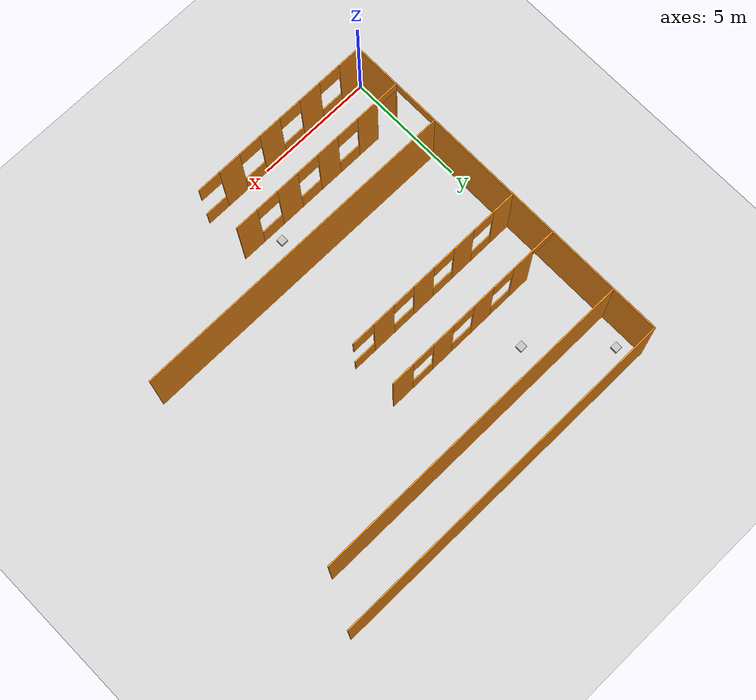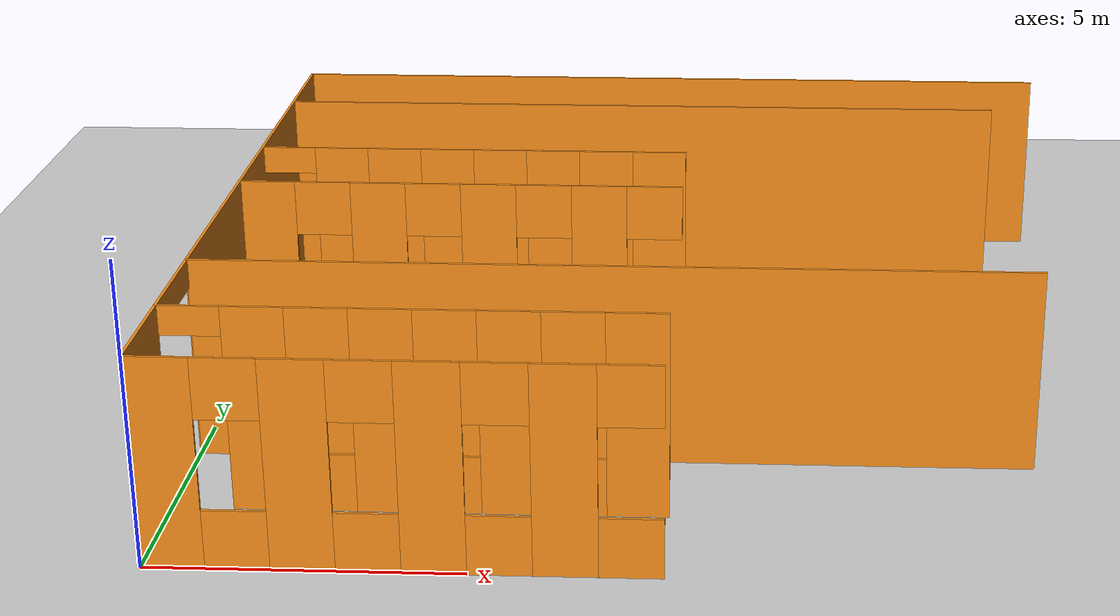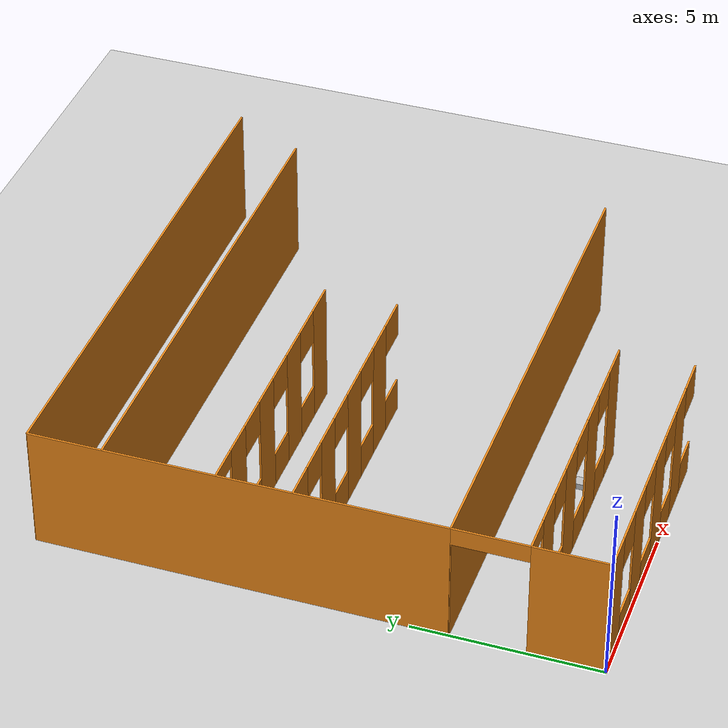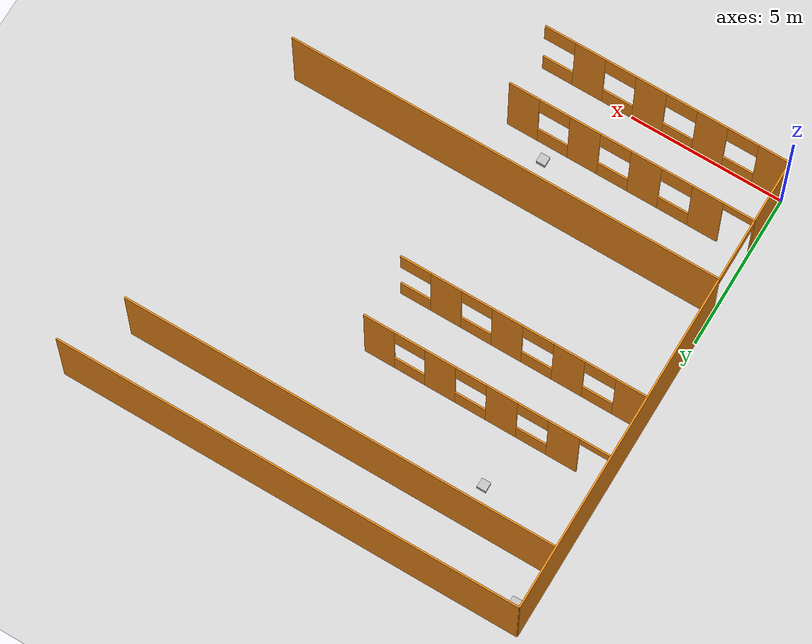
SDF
<sdf version="1.6">
 <world name="default">
  <include><uri>model://rirpc_box</uri><name>cube_4</name><pose>3.03125 11.71875 0 0 0 0</pose></include>
  <include><uri>model://rirpc_box</uri><name>cube_3</name><pose>6.53125 2.46875 0 0 0 0</pose></include>
  <include><uri>model://rirpc_box</uri><name>cube_0</name><pose>0.53125 14.21875 0 0 0 0</pose></include>
  <model name="window_30">
   <pose>2.5 10.0 1.75 0 0 -0.0</pose>
   <link name="top">
    <pose>0 0 1.25 0 0 0</pose>
    <inertial>
     <mass>1</mass>
     <inertia><ixx>0</ixx><ixy>0</ixy><ixz>0</ixz><iyy>0</iyy><iyz>0</iyz><izz>0</izz></inertia>
    </inertial>
    <collision name="collision"><geometry><box><size>1.0 0.05 1.0</size></box></geometry></collision>
    <visual name="visual">
     <geometry><box><size>1.0 0.05 1.0</size></box></geometry>
     <material>
      <script><name>Gazebo/Orange</name><uri>file://media/materials/scripts/gazebo.material</uri></script>
     </material>
    </visual>
   </link>
   <link name="bot">
    <pose>0 0 -1.25 0 0 0</pose>
    <inertial>
     <mass>1</mass>
     <inertia><ixx>0</ixx><ixy>0</ixy><ixz>0</ixz><iyy>0</iyy><iyz>0</iyz><izz>0</izz></inertia>
    </inertial>
    <collision name="collision"><geometry><box><size>1.0 0.05 1.0</size></box></geometry></collision>
    <visual name="visual">
     <geometry><box><size>1.0 0.05 1.0</size></box></geometry>
     <material>
      <script><name>Gazebo/Orange</name><uri>file://media/materials/scripts/gazebo.material</uri></script>
     </material>
    </visual>
   </link>
   <static>1</static>
  </model>
  <model name="window_29">
   <pose>4.5 10.0 1.75 0 0 -0.0</pose>
   <link name="top">
    <pose>0 0 1.25 0 0 0</pose>
    <inertial>
     <mass>1</mass>
     <inertia><ixx>0</ixx><ixy>0</ixy><ixz>0</ixz><iyy>0</iyy><iyz>0</iyz><izz>0</izz></inertia>
    </inertial>
    <collision name="collision"><geometry><box><size>1.0 0.05 1.0</size></box></geometry></collision>
    <visual name="visual">
     <geometry><box><size>1.0 0.05 1.0</size></box></geometry>
     <material>
      <script><name>Gazebo/Orange</name><uri>file://media/materials/scripts/gazebo.material</uri></script>
     </material>
    </visual>
   </link>
   <link name="bot">
    <pose>0 0 -1.25 0 0 0</pose>
    <inertial>
     <mass>1</mass>
     <inertia><ixx>0</ixx><ixy>0</ixy><ixz>0</ixz><iyy>0</iyy><iyz>0</iyz><izz>0</izz></inertia>
    </inertial>
    <collision name="collision"><geometry><box><size>1.0 0.05 1.0</size></box></geometry></collision>
    <visual name="visual">
     <geometry><box><size>1.0 0.05 1.0</size></box></geometry>
     <material>
      <script><name>Gazebo/Orange</name><uri>file://media/materials/scripts/gazebo.material</uri></script>
     </material>
    </visual>
   </link>
   <static>1</static>
  </model>
  <model name="window_28">
   <pose>6.5 10.0 1.75 0 0 -3.141592653589793</pose>
   <link name="top">
    <pose>0 0 1.25 0 0 0</pose>
    <inertial>
     <mass>1</mass>
     <inertia><ixx>0</ixx><ixy>0</ixy><ixz>0</ixz><iyy>0</iyy><iyz>0</iyz><izz>0</izz></inertia>
    </inertial>
    <collision name="collision"><geometry><box><size>1.0 0.05 1.0</size></box></geometry></collision>
    <visual name="visual">
     <geometry><box><size>1.0 0.05 1.0</size></box></geometry>
     <material>
      <script><name>Gazebo/Orange</name><uri>file://media/materials/scripts/gazebo.material</uri></script>
     </material>
    </visual>
   </link>
   <link name="bot">
    <pose>0 0 -1.25 0 0 0</pose>
    <inertial>
     <mass>1</mass>
     <inertia><ixx>0</ixx><ixy>0</ixy><ixz>0</ixz><iyy>0</iyy><iyz>0</iyz><izz>0</izz></inertia>
    </inertial>
    <collision name="collision"><geometry><box><size>1.0 0.05 1.0</size></box></geometry></collision>
    <visual name="visual">
     <geometry><box><size>1.0 0.05 1.0</size></box></geometry>
     <material>
      <script><name>Gazebo/Orange</name><uri>file://media/materials/scripts/gazebo.material</uri></script>
     </material>
    </visual>
   </link>
   <static>1</static>
  </model>
  <model name="window_20">
   <pose>7.5 8.0 1.75 0 0 -3.141592653589793</pose>
   <link name="top">
    <pose>0 0 1.25 0 0 0</pose>
    <inertial>
     <mass>1</mass>
     <inertia><ixx>0</ixx><ixy>0</ixy><ixz>0</ixz><iyy>0</iyy><iyz>0</iyz><izz>0</izz></inertia>
    </inertial>
    <collision name="collision"><geometry><box><size>1.0 0.05 1.0</size></box></geometry></collision>
    <visual name="visual">
     <geometry><box><size>1.0 0.05 1.0</size></box></geometry>
     <material>
      <script><name>Gazebo/Orange</name><uri>file://media/materials/scripts/gazebo.material</uri></script>
     </material>
    </visual>
   </link>
   <link name="bot">
    <pose>0 0 -1.25 0 0 0</pose>
    <inertial>
     <mass>1</mass>
     <inertia><ixx>0</ixx><ixy>0</ixy><ixz>0</ixz><iyy>0</iyy><iyz>0</iyz><izz>0</izz></inertia>
    </inertial>
    <collision name="collision"><geometry><box><size>1.0 0.05 1.0</size></box></geometry></collision>
    <visual name="visual">
     <geometry><box><size>1.0 0.05 1.0</size></box></geometry>
     <material>
      <script><name>Gazebo/Orange</name><uri>file://media/materials/scripts/gazebo.material</uri></script>
     </material>
    </visual>
   </link>
   <static>1</static>
  </model>
  <model name="window_19">
   <pose>5.5 8.0 1.75 0 0 -3.141592653589793</pose>
   <link name="top">
    <pose>0 0 1.25 0 0 0</pose>
    <inertial>
     <mass>1</mass>
     <inertia><ixx>0</ixx><ixy>0</ixy><ixz>0</ixz><iyy>0</iyy><iyz>0</iyz><izz>0</izz></inertia>
    </inertial>
    <collision name="collision"><geometry><box><size>1.0 0.05 1.0</size></box></geometry></collision>
    <visual name="visual">
     <geometry><box><size>1.0 0.05 1.0</size></box></geometry>
     <material>
      <script><name>Gazebo/Orange</name><uri>file://media/materials/scripts/gazebo.material</uri></script>
     </material>
    </visual>
   </link>
   <link name="bot">
    <pose>0 0 -1.25 0 0 0</pose>
    <inertial>
     <mass>1</mass>
     <inertia><ixx>0</ixx><ixy>0</ixy><ixz>0</ixz><iyy>0</iyy><iyz>0</iyz><izz>0</izz></inertia>
    </inertial>
    <collision name="collision"><geometry><box><size>1.0 0.05 1.0</size></box></geometry></collision>
    <visual name="visual">
     <geometry><box><size>1.0 0.05 1.0</size></box></geometry>
     <material>
      <script><name>Gazebo/Orange</name><uri>file://media/materials/scripts/gazebo.material</uri></script>
     </material>
    </visual>
   </link>
   <static>1</static>
  </model>
  <model name="window_18">
   <pose>3.5 8.0 1.75 0 0 -3.141592653589793</pose>
   <link name="top">
    <pose>0 0 1.25 0 0 0</pose>
    <inertial>
     <mass>1</mass>
     <inertia><ixx>0</ixx><ixy>0</ixy><ixz>0</ixz><iyy>0</iyy><iyz>0</iyz><izz>0</izz></inertia>
    </inertial>
    <collision name="collision"><geometry><box><size>1.0 0.05 1.0</size></box></geometry></collision>
    <visual name="visual">
     <geometry><box><size>1.0 0.05 1.0</size></box></geometry>
     <material>
      <script><name>Gazebo/Orange</name><uri>file://media/materials/scripts/gazebo.material</uri></script>
     </material>
    </visual>
   </link>
   <link name="bot">
    <pose>0 0 -1.25 0 0 0</pose>
    <inertial>
     <mass>1</mass>
     <inertia><ixx>0</ixx><ixy>0</ixy><ixz>0</ixz><iyy>0</iyy><iyz>0</iyz><izz>0</izz></inertia>
    </inertial>
    <collision name="collision"><geometry><box><size>1.0 0.05 1.0</size></box></geometry></collision>
    <visual name="visual">
     <geometry><box><size>1.0 0.05 1.0</size></box></geometry>
     <material>
      <script><name>Gazebo/Orange</name><uri>file://media/materials/scripts/gazebo.material</uri></script>
     </material>
    </visual>
   </link>
   <static>1</static>
  </model>
  <model name="window_17">
   <pose>1.5 8.0 1.75 0 0 -3.141592653589793</pose>
   <link name="top">
    <pose>0 0 1.25 0 0 0</pose>
    <inertial>
     <mass>1</mass>
     <inertia><ixx>0</ixx><ixy>0</ixy><ixz>0</ixz><iyy>0</iyy><iyz>0</iyz><izz>0</izz></inertia>
    </inertial>
    <collision name="collision"><geometry><box><size>1.0 0.05 1.0</size></box></geometry></collision>
    <visual name="visual">
     <geometry><box><size>1.0 0.05 1.0</size></box></geometry>
     <material>
      <script><name>Gazebo/Orange</name><uri>file://media/materials/scripts/gazebo.material</uri></script>
     </material>
    </visual>
   </link>
   <link name="bot">
    <pose>0 0 -1.25 0 0 0</pose>
    <inertial>
     <mass>1</mass>
     <inertia><ixx>0</ixx><ixy>0</ixy><ixz>0</ixz><iyy>0</iyy><iyz>0</iyz><izz>0</izz></inertia>
    </inertial>
    <collision name="collision"><geometry><box><size>1.0 0.05 1.0</size></box></geometry></collision>
    <visual name="visual">
     <geometry><box><size>1.0 0.05 1.0</size></box></geometry>
     <material>
      <script><name>Gazebo/Orange</name><uri>file://media/materials/scripts/gazebo.material</uri></script>
     </material>
    </visual>
   </link>
   <static>1</static>
  </model>
  <model name="window_12">
   <pose>6.5 2.0 1.75 0 0 -3.141592653589793</pose>
   <link name="top">
    <pose>0 0 1.25 0 0 0</pose>
    <inertial>
     <mass>1</mass>
     <inertia><ixx>0</ixx><ixy>0</ixy><ixz>0</ixz><iyy>0</iyy><iyz>0</iyz><izz>0</izz></inertia>
    </inertial>
    <collision name="collision"><geometry><box><size>1.0 0.05 1.0</size></box></geometry></collision>
    <visual name="visual">
     <geometry><box><size>1.0 0.05 1.0</size></box></geometry>
     <material>
      <script><name>Gazebo/Orange</name><uri>file://media/materials/scripts/gazebo.material</uri></script>
     </material>
    </visual>
   </link>
   <link name="bot">
    <pose>0 0 -1.25 0 0 0</pose>
    <inertial>
     <mass>1</mass>
     <inertia><ixx>0</ixx><ixy>0</ixy><ixz>0</ixz><iyy>0</iyy><iyz>0</iyz><izz>0</izz></inertia>
    </inertial>
    <collision name="collision"><geometry><box><size>1.0 0.05 1.0</size></box></geometry></collision>
    <visual name="visual">
     <geometry><box><size>1.0 0.05 1.0</size></box></geometry>
     <material>
      <script><name>Gazebo/Orange</name><uri>file://media/materials/scripts/gazebo.material</uri></script>
     </material>
    </visual>
   </link>
   <static>1</static>
  </model>
  <model name="window_11">
   <pose>4.5 2.0 1.75 0 0 -3.141592653589793</pose>
   <link name="top">
    <pose>0 0 1.25 0 0 0</pose>
    <inertial>
     <mass>1</mass>
     <inertia><ixx>0</ixx><ixy>0</ixy><ixz>0</ixz><iyy>0</iyy><iyz>0</iyz><izz>0</izz></inertia>
    </inertial>
    <collision name="collision"><geometry><box><size>1.0 0.05 1.0</size></box></geometry></collision>
    <visual name="visual">
     <geometry><box><size>1.0 0.05 1.0</size></box></geometry>
     <material>
      <script><name>Gazebo/Orange</name><uri>file://media/materials/scripts/gazebo.material</uri></script>
     </material>
    </visual>
   </link>
   <link name="bot">
    <pose>0 0 -1.25 0 0 0</pose>
    <inertial>
     <mass>1</mass>
     <inertia><ixx>0</ixx><ixy>0</ixy><ixz>0</ixz><iyy>0</iyy><iyz>0</iyz><izz>0</izz></inertia>
    </inertial>
    <collision name="collision"><geometry><box><size>1.0 0.05 1.0</size></box></geometry></collision>
    <visual name="visual">
     <geometry><box><size>1.0 0.05 1.0</size></box></geometry>
     <material>
      <script><name>Gazebo/Orange</name><uri>file://media/materials/scripts/gazebo.material</uri></script>
     </material>
    </visual>
   </link>
   <static>1</static>
  </model>
  <model name="window_10">
   <pose>2.5 2.0 1.75 0 0 -3.141592653589793</pose>
   <link name="top">
    <pose>0 0 1.25 0 0 0</pose>
    <inertial>
     <mass>1</mass>
     <inertia><ixx>0</ixx><ixy>0</ixy><ixz>0</ixz><iyy>0</iyy><iyz>0</iyz><izz>0</izz></inertia>
    </inertial>
    <collision name="collision"><geometry><box><size>1.0 0.05 1.0</size></box></geometry></collision>
    <visual name="visual">
     <geometry><box><size>1.0 0.05 1.0</size></box></geometry>
     <material>
      <script><name>Gazebo/Orange</name><uri>file://media/materials/scripts/gazebo.material</uri></script>
     </material>
    </visual>
   </link>
   <link name="bot">
    <pose>0 0 -1.25 0 0 0</pose>
    <inertial>
     <mass>1</mass>
     <inertia><ixx>0</ixx><ixy>0</ixy><ixz>0</ixz><iyy>0</iyy><iyz>0</iyz><izz>0</izz></inertia>
    </inertial>
    <collision name="collision"><geometry><box><size>1.0 0.05 1.0</size></box></geometry></collision>
    <visual name="visual">
     <geometry><box><size>1.0 0.05 1.0</size></box></geometry>
     <material>
      <script><name>Gazebo/Orange</name><uri>file://media/materials/scripts/gazebo.material</uri></script>
     </material>
    </visual>
   </link>
   <static>1</static>
  </model>
  <model name="window_4">
   <pose>7.5 0.0 1.75 0 0 -3.141592653589793</pose>
   <link name="top">
    <pose>0 0 1.25 0 0 0</pose>
    <inertial>
     <mass>1</mass>
     <inertia><ixx>0</ixx><ixy>0</ixy><ixz>0</ixz><iyy>0</iyy><iyz>0</iyz><izz>0</izz></inertia>
    </inertial>
    <collision name="collision"><geometry><box><size>1.0 0.05 1.0</size></box></geometry></collision>
    <visual name="visual">
     <geometry><box><size>1.0 0.05 1.0</size></box></geometry>
     <material>
      <script><name>Gazebo/Orange</name><uri>file://media/materials/scripts/gazebo.material</uri></script>
     </material>
    </visual>
   </link>
   <link name="bot">
    <pose>0 0 -1.25 0 0 0</pose>
    <inertial>
     <mass>1</mass>
     <inertia><ixx>0</ixx><ixy>0</ixy><ixz>0</ixz><iyy>0</iyy><iyz>0</iyz><izz>0</izz></inertia>
    </inertial>
    <collision name="collision"><geometry><box><size>1.0 0.05 1.0</size></box></geometry></collision>
    <visual name="visual">
     <geometry><box><size>1.0 0.05 1.0</size></box></geometry>
     <material>
      <script><name>Gazebo/Orange</name><uri>file://media/materials/scripts/gazebo.material</uri></script>
     </material>
    </visual>
   </link>
   <static>1</static>
  </model>
  <model name="window_3">
   <pose>5.5 0.0 1.75 0 0 -3.141592653589793</pose>
   <link name="top">
    <pose>0 0 1.25 0 0 0</pose>
    <inertial>
     <mass>1</mass>
     <inertia><ixx>0</ixx><ixy>0</ixy><ixz>0</ixz><iyy>0</iyy><iyz>0</iyz><izz>0</izz></inertia>
    </inertial>
    <collision name="collision"><geometry><box><size>1.0 0.05 1.0</size></box></geometry></collision>
    <visual name="visual">
     <geometry><box><size>1.0 0.05 1.0</size></box></geometry>
     <material>
      <script><name>Gazebo/Orange</name><uri>file://media/materials/scripts/gazebo.material</uri></script>
     </material>
    </visual>
   </link>
   <link name="bot">
    <pose>0 0 -1.25 0 0 0</pose>
    <inertial>
     <mass>1</mass>
     <inertia><ixx>0</ixx><ixy>0</ixy><ixz>0</ixz><iyy>0</iyy><iyz>0</iyz><izz>0</izz></inertia>
    </inertial>
    <collision name="collision"><geometry><box><size>1.0 0.05 1.0</size></box></geometry></collision>
    <visual name="visual">
     <geometry><box><size>1.0 0.05 1.0</size></box></geometry>
     <material>
      <script><name>Gazebo/Orange</name><uri>file://media/materials/scripts/gazebo.material</uri></script>
     </material>
    </visual>
   </link>
   <static>1</static>
  </model>
  <model name="window_2">
   <pose>3.5 0.0 1.75 0 0 -3.141592653589793</pose>
   <link name="top">
    <pose>0 0 1.25 0 0 0</pose>
    <inertial>
     <mass>1</mass>
     <inertia><ixx>0</ixx><ixy>0</ixy><ixz>0</ixz><iyy>0</iyy><iyz>0</iyz><izz>0</izz></inertia>
    </inertial>
    <collision name="collision"><geometry><box><size>1.0 0.05 1.0</size></box></geometry></collision>
    <visual name="visual">
     <geometry><box><size>1.0 0.05 1.0</size></box></geometry>
     <material>
      <script><name>Gazebo/Orange</name><uri>file://media/materials/scripts/gazebo.material</uri></script>
     </material>
    </visual>
   </link>
   <link name="bot">
    <pose>0 0 -1.25 0 0 0</pose>
    <inertial>
     <mass>1</mass>
     <inertia><ixx>0</ixx><ixy>0</ixy><ixz>0</ixz><iyy>0</iyy><iyz>0</iyz><izz>0</izz></inertia>
    </inertial>
    <collision name="collision"><geometry><box><size>1.0 0.05 1.0</size></box></geometry></collision>
    <visual name="visual">
     <geometry><box><size>1.0 0.05 1.0</size></box></geometry>
     <material>
      <script><name>Gazebo/Orange</name><uri>file://media/materials/scripts/gazebo.material</uri></script>
     </material>
    </visual>
   </link>
   <static>1</static>
  </model>
  <model name="window_1">
   <pose>1.5 0.0 1.75 0 0 -3.141592653589793</pose>
   <link name="top">
    <pose>0 0 1.25 0 0 0</pose>
    <inertial>
     <mass>1</mass>
     <inertia><ixx>0</ixx><ixy>0</ixy><ixz>0</ixz><iyy>0</iyy><iyz>0</iyz><izz>0</izz></inertia>
    </inertial>
    <collision name="collision"><geometry><box><size>1.0 0.05 1.0</size></box></geometry></collision>
    <visual name="visual">
     <geometry><box><size>1.0 0.05 1.0</size></box></geometry>
     <material>
      <script><name>Gazebo/Orange</name><uri>file://media/materials/scripts/gazebo.material</uri></script>
     </material>
    </visual>
   </link>
   <link name="bot">
    <pose>0 0 -1.25 0 0 0</pose>
    <inertial>
     <mass>1</mass>
     <inertia><ixx>0</ixx><ixy>0</ixy><ixz>0</ixz><iyy>0</iyy><iyz>0</iyz><izz>0</izz></inertia>
    </inertial>
    <collision name="collision"><geometry><box><size>1.0 0.05 1.0</size></box></geometry></collision>
    <visual name="visual">
     <geometry><box><size>1.0 0.05 1.0</size></box></geometry>
     <material>
      <script><name>Gazebo/Orange</name><uri>file://media/materials/scripts/gazebo.material</uri></script>
     </material>
    </visual>
   </link>
   <static>1</static>
  </model>
  <model name="box_44">
   <pose>0.5 10.0 3.25 0 0 -0.0</pose>
   <link name="link">
    <inertial>
     <mass>1</mass>
     <inertia><ixx>0</ixx><ixy>0</ixy><ixz>0</ixz><iyy>0</iyy><iyz>0</iyz><izz>0</izz></inertia>
    </inertial>
    <collision name="collision"><geometry><box><size>1.0 0.05 0.5</size></box></geometry></collision>
    <visual name="visual">
     <geometry><box><size>1.0 0.05 0.5</size></box></geometry>
     <material>
      <script><name>Gazebo/Orange</name><uri>file://media/materials/scripts/gazebo.material</uri></script>
     </material>
    </visual>
   </link>
   <static>1</static>
  </model>
  <model name="box_40">
   <pose>0.5 2.0 3.25 0 0 -3.141592653589793</pose>
   <link name="link">
    <inertial>
     <mass>1</mass>
     <inertia><ixx>0</ixx><ixy>0</ixy><ixz>0</ixz><iyy>0</iyy><iyz>0</iyz><izz>0</izz></inertia>
    </inertial>
    <collision name="collision"><geometry><box><size>1.0 0.05 0.5</size></box></geometry></collision>
    <visual name="visual">
     <geometry><box><size>1.0 0.05 0.5</size></box></geometry>
     <material>
      <script><name>Gazebo/Orange</name><uri>file://media/materials/scripts/gazebo.material</uri></script>
     </material>
    </visual>
   </link>
   <static>1</static>
  </model>
  <model name="box_39">
   <pose>0.0 3.0 3.25 0 0 -1.5707963267948966</pose>
   <link name="link">
    <inertial>
     <mass>1</mass>
     <inertia><ixx>0</ixx><ixy>0</ixy><ixz>0</ixz><iyy>0</iyy><iyz>0</iyz><izz>0</izz></inertia>
    </inertial>
    <collision name="collision"><geometry><box><size>2.0 0.05 0.5</size></box></geometry></collision>
    <visual name="visual">
     <geometry><box><size>2.0 0.05 0.5</size></box></geometry>
     <material>
      <script><name>Gazebo/Orange</name><uri>file://media/materials/scripts/gazebo.material</uri></script>
     </material>
    </visual>
   </link>
   <static>1</static>
  </model>
  <model name="box_38">
   <pose>1.5 10.0 1.75 0 0 -0.0</pose>
   <link name="link">
    <inertial>
     <mass>1</mass>
     <inertia><ixx>0</ixx><ixy>0</ixy><ixz>0</ixz><iyy>0</iyy><iyz>0</iyz><izz>0</izz></inertia>
    </inertial>
    <collision name="collision"><geometry><box><size>1.0 0.05 3.5</size></box></geometry></collision>
    <visual name="visual">
     <geometry><box><size>1.0 0.05 3.5</size></box></geometry>
     <material>
      <script><name>Gazebo/Orange</name><uri>file://media/materials/scripts/gazebo.material</uri></script>
     </material>
    </visual>
   </link>
   <static>1</static>
  </model>
  <model name="box_37">
   <pose>3.5 10.0 1.75 0 0 -0.0</pose>
   <link name="link">
    <inertial>
     <mass>1</mass>
     <inertia><ixx>0</ixx><ixy>0</ixy><ixz>0</ixz><iyy>0</iyy><iyz>0</iyz><izz>0</izz></inertia>
    </inertial>
    <collision name="collision"><geometry><box><size>1.0 0.05 3.5</size></box></geometry></collision>
    <visual name="visual">
     <geometry><box><size>1.0 0.05 3.5</size></box></geometry>
     <material>
      <script><name>Gazebo/Orange</name><uri>file://media/materials/scripts/gazebo.material</uri></script>
     </material>
    </visual>
   </link>
   <static>1</static>
  </model>
  <model name="box_36">
   <pose>5.5 10.0 1.75 0 0 -0.0</pose>
   <link name="link">
    <inertial>
     <mass>1</mass>
     <inertia><ixx>0</ixx><ixy>0</ixy><ixz>0</ixz><iyy>0</iyy><iyz>0</iyz><izz>0</izz></inertia>
    </inertial>
    <collision name="collision"><geometry><box><size>1.0 0.05 3.5</size></box></geometry></collision>
    <visual name="visual">
     <geometry><box><size>1.0 0.05 3.5</size></box></geometry>
     <material>
      <script><name>Gazebo/Orange</name><uri>file://media/materials/scripts/gazebo.material</uri></script>
     </material>
    </visual>
   </link>
   <static>1</static>
  </model>
  <model name="box_35">
   <pose>7.5 10.0 1.75 0 0 -0.0</pose>
   <link name="link">
    <inertial>
     <mass>1</mass>
     <inertia><ixx>0</ixx><ixy>0</ixy><ixz>0</ixz><iyy>0</iyy><iyz>0</iyz><izz>0</izz></inertia>
    </inertial>
    <collision name="collision"><geometry><box><size>1.0 0.05 3.5</size></box></geometry></collision>
    <visual name="visual">
     <geometry><box><size>1.0 0.05 3.5</size></box></geometry>
     <material>
      <script><name>Gazebo/Orange</name><uri>file://media/materials/scripts/gazebo.material</uri></script>
     </material>
    </visual>
   </link>
   <static>1</static>
  </model>
  <model name="box_28">
   <pose>6.5 8.0 1.75 0 0 -3.141592653589793</pose>
   <link name="link">
    <inertial>
     <mass>1</mass>
     <inertia><ixx>0</ixx><ixy>0</ixy><ixz>0</ixz><iyy>0</iyy><iyz>0</iyz><izz>0</izz></inertia>
    </inertial>
    <collision name="collision"><geometry><box><size>1.0 0.05 3.5</size></box></geometry></collision>
    <visual name="visual">
     <geometry><box><size>1.0 0.05 3.5</size></box></geometry>
     <material>
      <script><name>Gazebo/Orange</name><uri>file://media/materials/scripts/gazebo.material</uri></script>
     </material>
    </visual>
   </link>
   <static>1</static>
  </model>
  <model name="box_27">
   <pose>4.5 8.0 1.75 0 0 -3.141592653589793</pose>
   <link name="link">
    <inertial>
     <mass>1</mass>
     <inertia><ixx>0</ixx><ixy>0</ixy><ixz>0</ixz><iyy>0</iyy><iyz>0</iyz><izz>0</izz></inertia>
    </inertial>
    <collision name="collision"><geometry><box><size>1.0 0.05 3.5</size></box></geometry></collision>
    <visual name="visual">
     <geometry><box><size>1.0 0.05 3.5</size></box></geometry>
     <material>
      <script><name>Gazebo/Orange</name><uri>file://media/materials/scripts/gazebo.material</uri></script>
     </material>
    </visual>
   </link>
   <static>1</static>
  </model>
  <model name="box_26">
   <pose>2.5 8.0 1.75 0 0 -3.141592653589793</pose>
   <link name="link">
    <inertial>
     <mass>1</mass>
     <inertia><ixx>0</ixx><ixy>0</ixy><ixz>0</ixz><iyy>0</iyy><iyz>0</iyz><izz>0</izz></inertia>
    </inertial>
    <collision name="collision"><geometry><box><size>1.0 0.05 3.5</size></box></geometry></collision>
    <visual name="visual">
     <geometry><box><size>1.0 0.05 3.5</size></box></geometry>
     <material>
      <script><name>Gazebo/Orange</name><uri>file://media/materials/scripts/gazebo.material</uri></script>
     </material>
    </visual>
   </link>
   <static>1</static>
  </model>
  <model name="box_25">
   <pose>0.5 8.0 1.75 0 0 -3.141592653589793</pose>
   <link name="link">
    <inertial>
     <mass>1</mass>
     <inertia><ixx>0</ixx><ixy>0</ixy><ixz>0</ixz><iyy>0</iyy><iyz>0</iyz><izz>0</izz></inertia>
    </inertial>
    <collision name="collision"><geometry><box><size>1.0 0.05 3.5</size></box></geometry></collision>
    <visual name="visual">
     <geometry><box><size>1.0 0.05 3.5</size></box></geometry>
     <material>
      <script><name>Gazebo/Orange</name><uri>file://media/materials/scripts/gazebo.material</uri></script>
     </material>
    </visual>
   </link>
   <static>1</static>
  </model>
  <model name="box_23">
   <pose>7.0 4.0 1.75 0 0 -3.141592653589793</pose>
   <link name="link">
    <inertial>
     <mass>1</mass>
     <inertia><ixx>0</ixx><ixy>0</ixy><ixz>0</ixz><iyy>0</iyy><iyz>0</iyz><izz>0</izz></inertia>
    </inertial>
    <collision name="collision"><geometry><box><size>14.0 0.05 3.5</size></box></geometry></collision>
    <visual name="visual">
     <geometry><box><size>14.0 0.05 3.5</size></box></geometry>
     <material>
      <script><name>Gazebo/Orange</name><uri>file://media/materials/scripts/gazebo.material</uri></script>
     </material>
    </visual>
   </link>
   <static>1</static>
  </model>
  <model name="box_22">
   <pose>3.5 2.0 1.75 0 0 -0.0</pose>
   <link name="link">
    <inertial>
     <mass>1</mass>
     <inertia><ixx>0</ixx><ixy>0</ixy><ixz>0</ixz><iyy>0</iyy><iyz>0</iyz><izz>0</izz></inertia>
    </inertial>
    <collision name="collision"><geometry><box><size>1.0 0.05 3.5</size></box></geometry></collision>
    <visual name="visual">
     <geometry><box><size>1.0 0.05 3.5</size></box></geometry>
     <material>
      <script><name>Gazebo/Orange</name><uri>file://media/materials/scripts/gazebo.material</uri></script>
     </material>
    </visual>
   </link>
   <static>1</static>
  </model>
  <model name="box_21">
   <pose>5.5 2.0 1.75 0 0 -0.0</pose>
   <link name="link">
    <inertial>
     <mass>1</mass>
     <inertia><ixx>0</ixx><ixy>0</ixy><ixz>0</ixz><iyy>0</iyy><iyz>0</iyz><izz>0</izz></inertia>
    </inertial>
    <collision name="collision"><geometry><box><size>1.0 0.05 3.5</size></box></geometry></collision>
    <visual name="visual">
     <geometry><box><size>1.0 0.05 3.5</size></box></geometry>
     <material>
      <script><name>Gazebo/Orange</name><uri>file://media/materials/scripts/gazebo.material</uri></script>
     </material>
    </visual>
   </link>
   <static>1</static>
  </model>
  <model name="box_20">
   <pose>7.5 2.0 1.75 0 0 -0.0</pose>
   <link name="link">
    <inertial>
     <mass>1</mass>
     <inertia><ixx>0</ixx><ixy>0</ixy><ixz>0</ixz><iyy>0</iyy><iyz>0</iyz><izz>0</izz></inertia>
    </inertial>
    <collision name="collision"><geometry><box><size>1.0 0.05 3.5</size></box></geometry></collision>
    <visual name="visual">
     <geometry><box><size>1.0 0.05 3.5</size></box></geometry>
     <material>
      <script><name>Gazebo/Orange</name><uri>file://media/materials/scripts/gazebo.material</uri></script>
     </material>
    </visual>
   </link>
   <static>1</static>
  </model>
  <model name="box_16">
   <pose>1.5 2.0 1.75 0 0 -3.141592653589793</pose>
   <link name="link">
    <inertial>
     <mass>1</mass>
     <inertia><ixx>0</ixx><ixy>0</ixy><ixz>0</ixz><iyy>0</iyy><iyz>0</iyz><izz>0</izz></inertia>
    </inertial>
    <collision name="collision"><geometry><box><size>1.0 0.05 3.5</size></box></geometry></collision>
    <visual name="visual">
     <geometry><box><size>1.0 0.05 3.5</size></box></geometry>
     <material>
      <script><name>Gazebo/Orange</name><uri>file://media/materials/scripts/gazebo.material</uri></script>
     </material>
    </visual>
   </link>
   <static>1</static>
  </model>
  <model name="box_15">
   <pose>7.5 15.0 1.75 0 0 -3.141592653589793</pose>
   <link name="link">
    <inertial>
     <mass>1</mass>
     <inertia><ixx>0</ixx><ixy>0</ixy><ixz>0</ixz><iyy>0</iyy><iyz>0</iyz><izz>0</izz></inertia>
    </inertial>
    <collision name="collision"><geometry><box><size>15.0 0.05 3.5</size></box></geometry></collision>
    <visual name="visual">
     <geometry><box><size>15.0 0.05 3.5</size></box></geometry>
     <material>
      <script><name>Gazebo/Orange</name><uri>file://media/materials/scripts/gazebo.material</uri></script>
     </material>
    </visual>
   </link>
   <static>1</static>
  </model>
  <model name="box_14">
   <pose>0.0 9.5 1.75 0 0 -1.5707963267948966</pose>
   <link name="link">
    <inertial>
     <mass>1</mass>
     <inertia><ixx>0</ixx><ixy>0</ixy><ixz>0</ixz><iyy>0</iyy><iyz>0</iyz><izz>0</izz></inertia>
    </inertial>
    <collision name="collision"><geometry><box><size>11.0 0.05 3.5</size></box></geometry></collision>
    <visual name="visual">
     <geometry><box><size>11.0 0.05 3.5</size></box></geometry>
     <material>
      <script><name>Gazebo/Orange</name><uri>file://media/materials/scripts/gazebo.material</uri></script>
     </material>
    </visual>
   </link>
   <static>1</static>
  </model>
  <model name="box_13">
   <pose>7.0 13.0 1.75 0 0 -3.141592653589793</pose>
   <link name="link">
    <inertial>
     <mass>1</mass>
     <inertia><ixx>0</ixx><ixy>0</ixy><ixz>0</ixz><iyy>0</iyy><iyz>0</iyz><izz>0</izz></inertia>
    </inertial>
    <collision name="collision"><geometry><box><size>14.0 0.05 3.5</size></box></geometry></collision>
    <visual name="visual">
     <geometry><box><size>14.0 0.05 3.5</size></box></geometry>
     <material>
      <script><name>Gazebo/Orange</name><uri>file://media/materials/scripts/gazebo.material</uri></script>
     </material>
    </visual>
   </link>
   <static>1</static>
  </model>
  <model name="box_12">
   <pose>0.0 1.0 1.75 0 0 -1.5707963267948966</pose>
   <link name="link">
    <inertial>
     <mass>1</mass>
     <inertia><ixx>0</ixx><ixy>0</ixy><ixz>0</ixz><iyy>0</iyy><iyz>0</iyz><izz>0</izz></inertia>
    </inertial>
    <collision name="collision"><geometry><box><size>2.0 0.05 3.5</size></box></geometry></collision>
    <visual name="visual">
     <geometry><box><size>2.0 0.05 3.5</size></box></geometry>
     <material>
      <script><name>Gazebo/Orange</name><uri>file://media/materials/scripts/gazebo.material</uri></script>
     </material>
    </visual>
   </link>
   <static>1</static>
  </model>
  <model name="box_4">
   <pose>6.5 0.0 1.75 0 0 -3.141592653589793</pose>
   <link name="link">
    <inertial>
     <mass>1</mass>
     <inertia><ixx>0</ixx><ixy>0</ixy><ixz>0</ixz><iyy>0</iyy><iyz>0</iyz><izz>0</izz></inertia>
    </inertial>
    <collision name="collision"><geometry><box><size>1.0 0.05 3.5</size></box></geometry></collision>
    <visual name="visual">
     <geometry><box><size>1.0 0.05 3.5</size></box></geometry>
     <material>
      <script><name>Gazebo/Orange</name><uri>file://media/materials/scripts/gazebo.material</uri></script>
     </material>
    </visual>
   </link>
   <static>1</static>
  </model>
  <model name="box_3">
   <pose>4.5 0.0 1.75 0 0 -3.141592653589793</pose>
   <link name="link">
    <inertial>
     <mass>1</mass>
     <inertia><ixx>0</ixx><ixy>0</ixy><ixz>0</ixz><iyy>0</iyy><iyz>0</iyz><izz>0</izz></inertia>
    </inertial>
    <collision name="collision"><geometry><box><size>1.0 0.05 3.5</size></box></geometry></collision>
    <visual name="visual">
     <geometry><box><size>1.0 0.05 3.5</size></box></geometry>
     <material>
      <script><name>Gazebo/Orange</name><uri>file://media/materials/scripts/gazebo.material</uri></script>
     </material>
    </visual>
   </link>
   <static>1</static>
  </model>
  <model name="box_2">
   <pose>2.5 0.0 1.75 0 0 -3.141592653589793</pose>
   <link name="link">
    <inertial>
     <mass>1</mass>
     <inertia><ixx>0</ixx><ixy>0</ixy><ixz>0</ixz><iyy>0</iyy><iyz>0</iyz><izz>0</izz></inertia>
    </inertial>
    <collision name="collision"><geometry><box><size>1.0 0.05 3.5</size></box></geometry></collision>
    <visual name="visual">
     <geometry><box><size>1.0 0.05 3.5</size></box></geometry>
     <material>
      <script><name>Gazebo/Orange</name><uri>file://media/materials/scripts/gazebo.material</uri></script>
     </material>
    </visual>
   </link>
   <static>1</static>
  </model>
  <model name="box_1">
   <pose>0.5 0.0 1.75 0 0 -3.141592653589793</pose>
   <link name="link">
    <inertial>
     <mass>1</mass>
     <inertia><ixx>0</ixx><ixy>0</ixy><ixz>0</ixz><iyy>0</iyy><iyz>0</iyz><izz>0</izz></inertia>
    </inertial>
    <collision name="collision"><geometry><box><size>1.0 0.05 3.5</size></box></geometry></collision>
    <visual name="visual">
     <geometry><box><size>1.0 0.05 3.5</size></box></geometry>
     <material>
      <script><name>Gazebo/Orange</name><uri>file://media/materials/scripts/gazebo.material</uri></script>
     </material>
    </visual>
   </link>
   <static>1</static>
  </model>
  <model name="ground_plane">
   <static>1</static>
   <link name="link">
    <collision name="collision">
     <geometry><plane><normal>0 0 1</normal><size>100 100</size></plane></geometry>
     <surface>
      <contact><collide_bitmask>65535</collide_bitmask></contact>
      <friction><ode><mu>100</mu><mu2>50</mu2></ode></friction>
     </surface>
    </collision>
    <visual name="visual">
     <cast_shadows>0</cast_shadows>
     <geometry><plane><normal>0 0 1</normal><size>100 100</size></plane></geometry>
     <material>
      <script><uri>file://media/materials/scripts/gazebo.material</uri><name>Gazebo/Grey</name></script>
     </material>
    </visual>
   </link>
  </model>
 </world>
</sdf>
